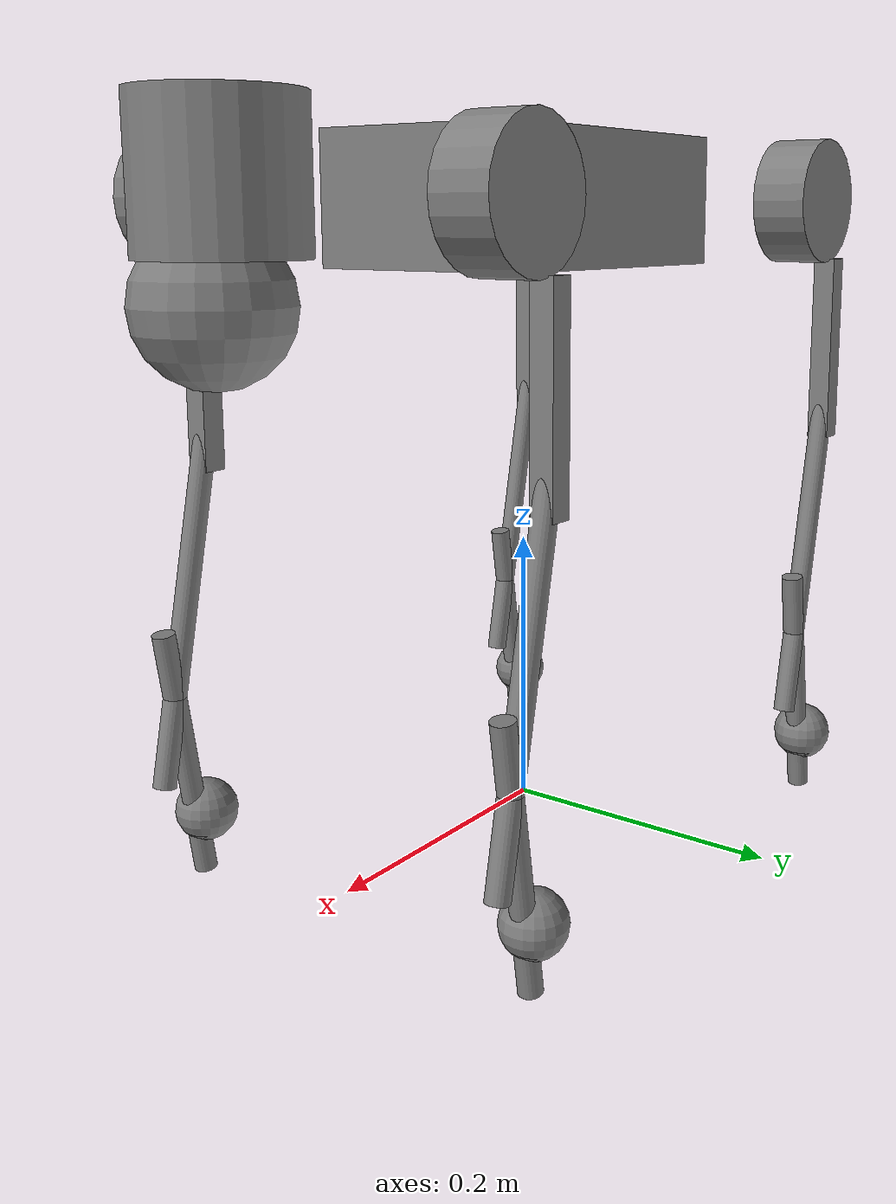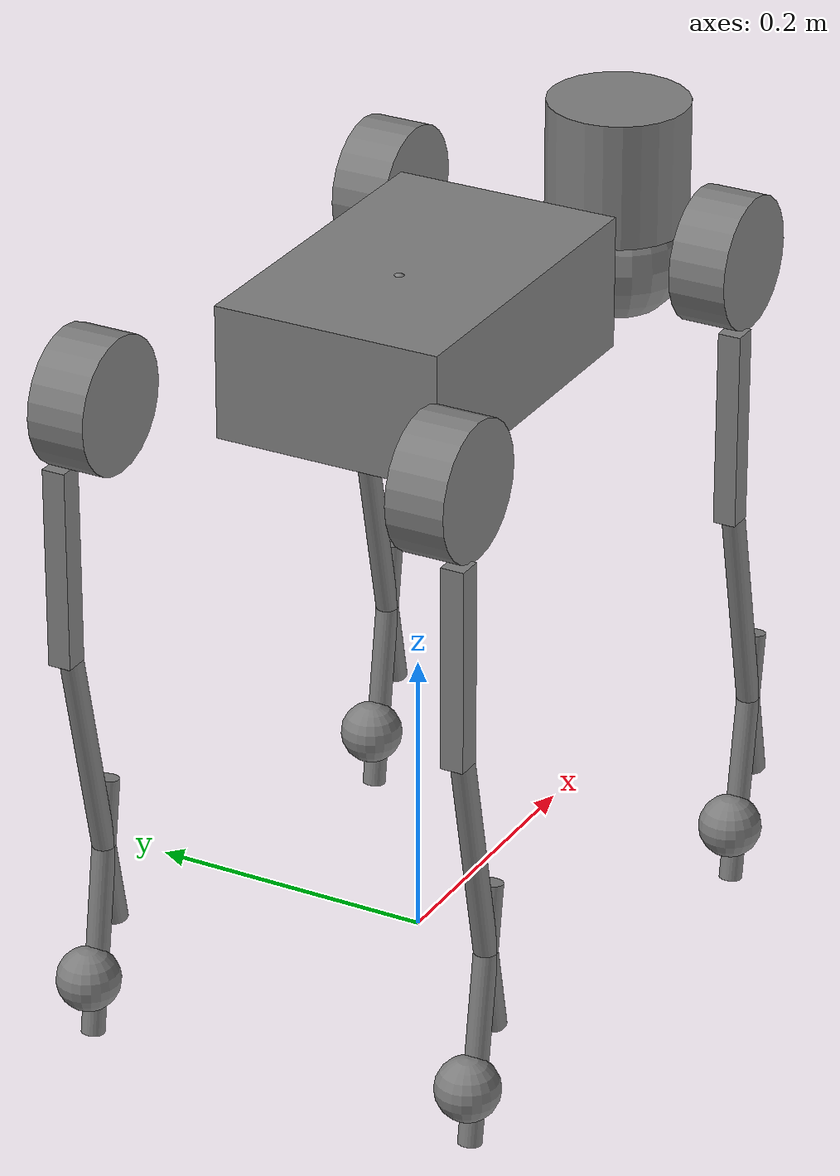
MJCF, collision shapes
<mujoco model="go2">
  <compiler angle="radian" meshdir="assets" autolimits="true"/>

  <option cone="elliptic" impratio="100"/>

  <default>
    <default class="go2">
      <geom friction="0.6" margin="0.001" condim="1"/>
      <joint axis="0 1 0" damping="2" armature="0.01" frictionloss="0.2"/>
      <motor ctrlrange="-23.7 23.7"/>
      <default class="abduction">
        <joint axis="1 0 0" range="-1.0472 1.0472"/>
      </default>
      <default class="hip">
        <default class="front_hip">
          <joint range="-1.5708 3.4907"/>
        </default>
        <default class="back_hip">
          <joint range="-0.5236 4.5379"/>
        </default>
      </default>
      <default class="knee">
        <joint range="-2.7227 -0.83776"/>
        <motor ctrlrange="-45.43 45.43"/>
      </default>
      <default class="visual">
        <geom type="mesh" contype="0" conaffinity="0" group="2"/>
      </default>
      <default class="collision">
        <geom group="3"/>
        <default class="foot">
          <geom size="0.022" pos="-0.002 0 -0.213" priority="1" solimp="0.015 1 0.022" condim="6"
            friction="0.8 0.02 0.01"/>
        </default>
      </default>
    </default>
  </default>

  <asset>
    <material name="black" rgba="0.000000 0.000000 0.000000 1.000000" metallic="0.000000" roughness="0.500000"/>
    <material name="gray" rgba="0.188235 0.203922 0.231373 1.000000" metallic="0.000000" roughness="0.390000"/>
    <material name="metal" rgba="0.639216 0.639216 0.639216 1.000000" metallic="1.000000" roughness="0.670000"/>
    <material name="white" rgba="0.941176 0.941176 0.941176 1.000000" metallic="0.000000" roughness="0.500000"/>

    <mesh file="base_0.obj"/>
    <mesh file="base_1.obj"/>
    <mesh file="base_2.obj"/>
    <mesh file="base_3.obj"/>
    <mesh file="base_4.obj"/>
    <mesh file="hip_0.obj"/>
    <mesh file="hip_1.obj"/>
    <mesh file="thigh_0.obj"/>
    <mesh file="thigh_1.obj"/>
    <mesh file="thigh_mirror_0.obj"/>
    <mesh file="thigh_mirror_1.obj"/>
    <mesh file="calf_0.obj"/>
    <mesh file="calf_1.obj"/>
    <mesh file="calf_mirror_0.obj"/>
    <mesh file="calf_mirror_1.obj"/>
    <mesh file="foot.obj"/>
  </asset>

  <worldbody>
    <body name="base" pos="0 0 0.445" childclass="go2">
      <inertial pos="0.021112 0 -0.005366" quat="-0.000543471 0.713435 -0.00173769 0.700719" mass="6.921"
        diaginertia="0.107027 0.0980771 0.0244531"/>
      <freejoint/>
      <geom mesh="base_0" material="black" class="visual"/>
      <geom mesh="base_1" material="black" class="visual"/>
      <geom mesh="base_2" material="black" class="visual"/>
      <geom mesh="base_3" material="white" class="visual"/>
      <geom mesh="base_4" material="gray" class="visual"/>
      <geom class="collision" size="0.1225 0.0795 0.046" type="box" />
      <geom class="collision" size="0.05 0.045" pos="0.285 0 0.01" type="cylinder" />
      <geom class="collision" size="0.047" pos="0.293 0 -0.06" />
      <site name="imu" pos="-0.02557 0 0.04232"/>
      <body name="FL_hip" pos="0.1934 0.0465 0">
        <inertial pos="-0.0054 0.00194 -0.000105" quat="0.497014 0.499245 0.505462 0.498237" mass="0.678"
          diaginertia="0.00088403 0.000596003 0.000479967"/>
        <joint name="FL_hip_joint" class="abduction"/>
        <geom mesh="hip_0" material="metal" class="visual"/>
        <geom mesh="hip_1" material="gray" class="visual"/>
        <geom class="collision" size="0.046 0.02" pos="0 0.08 0" quat="1 1 0 0" type="cylinder"/>
        <body name="FL_thigh" pos="0 0.0955 0">
          <inertial pos="-0.00374 -0.0223 -0.0327" quat="0.829533 0.0847635 -0.0200632 0.551623" mass="1.152"
            diaginertia="0.00594973 0.00584149 0.000878787"/>
          <joint name="FL_thigh_joint" class="front_hip"/>
          <geom mesh="thigh_0" material="metal" class="visual"/>
          <geom mesh="thigh_1" material="gray" class="visual"/>
          <geom class="collision" size="0.0695 0.008 0.0085" pos="-0.017 0 -0.113" quat="0.707107 0 0.707107 0" type="box"/>
          <body name="FL_calf" pos="0 0 -0.213">
            <inertial pos="0.00629595 -0.000622121 -0.141417" quat="0.710672 0.00154099 -0.00450087 0.703508"
              mass="0.241352" diaginertia="0.0014901 0.00146356 5.31397e-05"/>
            <joint name="FL_calf_joint" class="knee"/>
            <geom mesh="calf_0" material="gray" class="visual"/>
            <geom mesh="calf_1" material="black" class="visual"/>
            <geom class="collision" size="0.008 0.123" pos="0.009 0 -0.064" quat="0.994493 0 -0.104807 0" type="cylinder"/>
            <geom class="collision" size="0.008 0.091" pos="0.015 0 -0.166" quat="0.999688 0 0.076 0" type="cylinder"/>
            <geom pos="0 0 -0.213" mesh="foot" class="visual" material="black"/>
            <geom name="FL" class="foot"/>
            <geom class="collision" type="sphere" size="0.02" pos="-0.001 0.0 -0.215" quat="0.999688 0 0.0249974 0" />
          </body>
        </body>
      </body>
      <body name="FR_hip" pos="0.1934 -0.0465 0">
        <inertial pos="-0.0054 -0.00194 -0.000105" quat="0.498237 0.505462 0.499245 0.497014" mass="0.678"
          diaginertia="0.00088403 0.000596003 0.000479967"/>
        <joint name="FR_hip_joint" class="abduction"/>
        <geom mesh="hip_0" material="metal" class="visual" quat="4.63268e-05 1 0 0"/>
        <geom mesh="hip_1" material="gray" class="visual" quat="4.63268e-05 1 0 0"/>
        <geom class="collision" size="0.046 0.02" pos="0 -0.08 0" quat="0.707107 0.707107 0 0" type="cylinder"/>
        <body name="FR_thigh" pos="0 -0.0955 0">
          <inertial pos="-0.00374 0.0223 -0.0327" quat="0.551623 -0.0200632 0.0847635 0.829533" mass="1.152"
            diaginertia="0.00594973 0.00584149 0.000878787"/>
          <joint name="FR_thigh_joint" class="front_hip"/>
          <geom mesh="thigh_mirror_0" material="metal" class="visual"/>
          <geom mesh="thigh_mirror_1" material="gray" class="visual"/>
          <geom class="collision" size="0.0695 0.008 0.0085" pos="-0.017 0 -0.113" quat="0.707107 0 0.707107 0" type="box"/>
          <body name="FR_calf" pos="0 0 -0.213">
            <inertial pos="0.00629595 0.000622121 -0.141417" quat="0.703508 -0.00450087 0.00154099 0.710672"
              mass="0.241352" diaginertia="0.0014901 0.00146356 5.31397e-05"/>
            <joint name="FR_calf_joint" class="knee"/>
            <geom mesh="calf_mirror_0" material="gray" class="visual"/>
            <geom mesh="calf_mirror_1" material="black" class="visual"/>
            <geom class="collision" size="0.008 0.123" pos="0.009 0 -0.064" quat="0.994493 0 -0.104807 0" type="cylinder"/>
            <geom class="collision" size="0.008 0.091" pos="0.015 0 -0.166" quat="0.999688 0 0.076 0" type="cylinder"/>
            <geom pos="0 0 -0.213" mesh="foot" class="visual" material="black"/>
            <geom name="FR" class="foot"/>
            <geom class="collision" type="sphere" size="0.02" pos="-0.001 0.0 -0.215" quat="0.999688 0 0.0249974 0" />
          </body>
        </body>
      </body>
      <body name="RL_hip" pos="-0.1934 0.0465 0">
        <inertial pos="0.0054 0.00194 -0.000105" quat="0.505462 0.498237 0.497014 0.499245" mass="0.678"
          diaginertia="0.00088403 0.000596003 0.000479967"/>
        <joint name="RL_hip_joint" class="abduction"/>
        <geom mesh="hip_0" material="metal" class="visual" quat="4.63268e-05 0 1 0"/>
        <geom mesh="hip_1" material="gray" class="visual" quat="4.63268e-05 0 1 0"/>
        <geom class="collision" size="0.046 0.02" pos="0 0.08 0" quat="0.707107 0.707107 0 0" type="cylinder"/>
        <body name="RL_thigh" pos="0 0.0955 0">
          <inertial pos="-0.00374 -0.0223 -0.0327" quat="0.829533 0.0847635 -0.0200632 0.551623" mass="1.152"
            diaginertia="0.00594973 0.00584149 0.000878787"/>
          <joint name="RL_thigh_joint" class="back_hip"/>
          <geom mesh="thigh_0" material="metal" class="visual"/>
          <geom mesh="thigh_1" material="gray" class="visual"/>
          <geom class="collision" size="0.0695 0.008 0.0085" pos="-0.017 0 -0.113" quat="0.707107 0 0.707107 0" type="box"/>
          <body name="RL_calf" pos="0 0 -0.213">
            <inertial pos="0.00629595 -0.000622121 -0.141417" quat="0.710672 0.00154099 -0.00450087 0.703508"
              mass="0.241352" diaginertia="0.0014901 0.00146356 5.31397e-05"/>
            <joint name="RL_calf_joint" class="knee"/>
            <geom mesh="calf_0" material="gray" class="visual"/>
            <geom mesh="calf_1" material="black" class="visual"/>
            <geom class="collision" size="0.008 0.123" pos="0.009 0 -0.064" quat="0.994493 0 -0.104807 0" type="cylinder"/>
            <geom class="collision" size="0.008 0.091" pos="0.015 0 -0.166" quat="0.999688 0 0.076 0" type="cylinder"/>
            <geom pos="0 0 -0.213" mesh="foot" class="visual" material="black"/>
            <geom name="RL" class="foot"/>
            <geom class="collision" type="sphere" size="0.02" pos="-0.001 0.0 -0.215" quat="0.999688 0 0.0249974 0" />
          </body>
        </body>
      </body>
      <body name="RR_hip" pos="-0.1934 -0.0465 0">
        <inertial pos="0.0054 -0.00194 -0.000105" quat="0.499245 0.497014 0.498237 0.505462" mass="0.678"
          diaginertia="0.00088403 0.000596003 0.000479967"/>
        <joint name="RR_hip_joint" class="abduction"/>
        <geom mesh="hip_0" material="metal" class="visual" quat="2.14617e-09 4.63268e-05 4.63268e-05 -1"/>
        <geom mesh="hip_1" material="gray" class="visual" quat="2.14617e-09 4.63268e-05 4.63268e-05 -1"/>
        <geom  class="collision" size="0.046 0.02" pos="0 -0.08 0" quat="0.707107 0.707107 0 0" type="cylinder"/>
        <body name="RR_thigh" pos="0 -0.0955 0">
          <inertial pos="-0.00374 0.0223 -0.0327" quat="0.551623 -0.0200632 0.0847635 0.829533" mass="1.152"
            diaginertia="0.00594973 0.00584149 0.000878787"/>
          <joint name="RR_thigh_joint" class="back_hip"/>
          <geom mesh="thigh_mirror_0" material="metal" class="visual"/>
          <geom mesh="thigh_mirror_1" material="gray" class="visual"/>
          <geom class="collision" size="0.0695 0.008 0.0085" pos="-0.017 0 -0.113" quat="0.707107 0 0.707107 0" type="box"/>
          <body name="RR_calf" pos="0 0 -0.213">
            <inertial pos="0.00629595 0.000622121 -0.141417" quat="0.703508 -0.00450087 0.00154099 0.710672"
              mass="0.241352" diaginertia="0.0014901 0.00146356 5.31397e-05"/>
            <joint name="RR_calf_joint" class="knee"/>
            <geom mesh="calf_mirror_0" material="gray" class="visual"/>
            <geom mesh="calf_mirror_1" material="black" class="visual"/>
            <geom class="collision" size="0.008 0.123" pos="0.009 0 -0.064" quat="0.994493 0 -0.104807 0" type="cylinder"/>
            <geom class="collision" size="0.008 0.091" pos="0.015 0 -0.166" quat="0.999688 0 0.076 0" type="cylinder"/>
            <geom pos="0 0 -0.213" mesh="foot" class="visual" material="black"/>
            <geom name="RR" class="foot"/>
            <geom class="collision" type="sphere" size="0.02" pos="-0.001 0.0 -0.215" quat="0.999688 0 0.0249974 0" />
          </body>
        </body>
      </body>
    </body>
  </worldbody>

  <actuator>
    <motor class="abduction" name="FL_hip" joint="FL_hip_joint"/>
    <motor class="hip" name="FL_thigh" joint="FL_thigh_joint"/>
    <motor class="knee" name="FL_calf" joint="FL_calf_joint"/>
    <motor class="abduction" name="FR_hip" joint="FR_hip_joint"/>
    <motor class="hip" name="FR_thigh" joint="FR_thigh_joint"/>
    <motor class="knee" name="FR_calf" joint="FR_calf_joint"/>
    <motor class="abduction" name="RL_hip" joint="RL_hip_joint"/>
    <motor class="hip" name="RL_thigh" joint="RL_thigh_joint"/>
    <motor class="knee" name="RL_calf" joint="RL_calf_joint"/>
    <motor class="abduction" name="RR_hip" joint="RR_hip_joint"/>
    <motor class="hip" name="RR_thigh" joint="RR_thigh_joint"/>
    <motor class="knee" name="RR_calf" joint="RR_calf_joint"/>
  </actuator>

  <keyframe>
    <key name="home" qpos="0 0 0.34 1 0 0 0 0 0.9 -1.8 0 0.9 -1.8 0 0.9 -1.8 0 0.9 -1.8"
      ctrl="0 0 0 0 0 0 0 0 0 0 0 0"/>
  </keyframe>
</mujoco>
